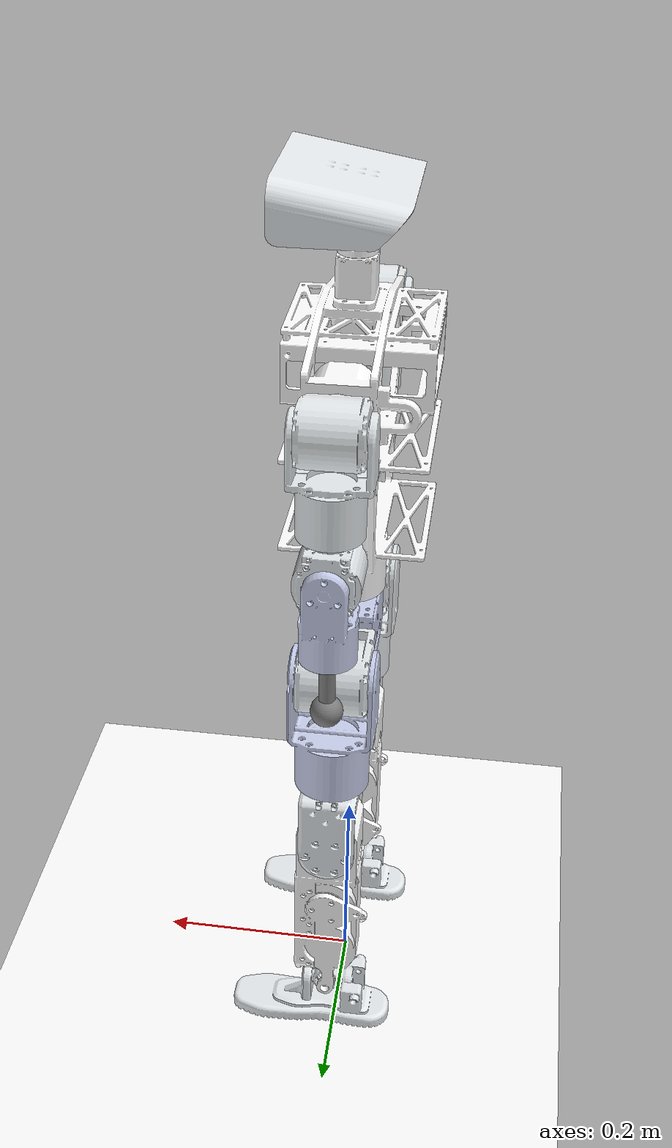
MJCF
<mujoco model="hi_25dof_250708">
  <compiler angle="radian" meshdir="meshes/"/>

  <asset>
    <mesh name="base_link" file="base_link.STL"/>
    <mesh name="waist_link" file="waist_link.STL"/>
    <mesh name="l_hip_pitch_link" file="l_hip_pitch_link.STL"/>
    <mesh name="l_hip_roll_link" file="l_hip_roll_link.STL"/>
    <mesh name="l_thigh_link" file="l_thigh_link.STL"/>
    <mesh name="l_calf_link" file="l_calf_link.STL"/>
    <mesh name="l_ankle_pitch_link" file="l_ankle_pitch_link.STL"/>
    <mesh name="l_ankle_roll_link" file="l_ankle_roll_link.STL"/>
    <mesh name="r_hip_pitch_link" file="r_hip_pitch_link.STL"/>
    <mesh name="r_hip_roll_link" file="r_hip_roll_link.STL"/>
    <mesh name="r_thigh_link" file="r_thigh_link.STL"/>
    <mesh name="r_calf_link" file="r_calf_link.STL"/>
    <mesh name="r_ankle_pitch_link" file="r_ankle_pitch_link.STL"/>
    <mesh name="r_ankle_roll_link" file="r_ankle_roll_link.STL"/>
    <mesh name="l_shoulder_pitch_link" file="l_shoulder_pitch_link.STL"/>
    <mesh name="l_shoulder_roll_link" file="l_shoulder_roll_link.STL"/>
    <mesh name="l_upper_arm_link" file="l_upper_arm_link.STL"/>
    <mesh name="l_elbow_link" file="l_elbow_link.STL"/>
    <mesh name="l_wrist_link" file="l_wrist_link.STL"/>
    <mesh name="r_shoulder_pitch_link" file="r_shoulder_pitch_link.STL"/>
    <mesh name="r_shoulder_roll_link" file="r_shoulder_roll_link.STL"/>
    <mesh name="r_upper_arm_link" file="r_upper_arm_link.STL"/>
    <mesh name="r_elbow_link" file="r_elbow_link.STL"/>
    <mesh name="r_wrist_link" file="r_wrist_link.STL"/>
    <mesh name="head_yaw_link" file="head_yaw_link.STL"/>
    <mesh name="head_pitch_link" file="head_pitch_link.STL"/>
  </asset>

  <worldbody>
    <body name="base_link" pos="0 0 0.688">
      <site name="imu" size="0.01" pos="-0.0 -0.0 0.0" />

      <inertial pos="0.007306 0 -0.048481" quat="0.999992 2.41514e-05 -0.00402332 -8.39315e-05" mass="4.80787" diaginertia="0.0458926 0.0316408 0.0186378"/>
      <joint name="floating_base_joint" type="free" limited="false" actuatorfrclimited="false"/>
      <geom type="mesh" contype="0" conaffinity="0" group="1" density="0" rgba="1 1 1 1" mesh="base_link"/>
      <geom type="mesh" rgba="1 1 1 1" mesh="base_link"/>
      <body name="waist_link" pos="0.009 0 -0.2126">
        <inertial pos="0 0 -0.0391895" quat="0.707107 0.707107 0 0" mass="1.35043" diaginertia="0.0022104 0.0019106 0.0010637"/>
        <joint name="waist_joint" pos="0 0 0" axis="0 0 1" range="-3.14 3.14" actuatorfrcrange="-21 21"/>
        <geom type="mesh" contype="0" conaffinity="0" group="1" density="0" rgba="0.79216 0.81961 0.93333 1" mesh="waist_link"/>
        <geom type="mesh" rgba="0.79216 0.81961 0.93333 1" mesh="waist_link"/>
        <body name="l_hip_pitch_link" pos="0 0.0575 -0.04">
          <inertial pos="-0.000511 0.039927 0" quat="0.707082 0.707082 0.005874 0.005874" mass="0.66609" diaginertia="0.00046911 0.0004671 0.00043299"/>
          <joint name="l_hip_pitch_joint" pos="0 0 0" axis="0 1 0" range="-3.14 3.14" actuatorfrcrange="-21 21"/>
          <geom type="mesh" contype="0" conaffinity="0" group="1" density="0" rgba="0.89804 0.91765 0.92941 1" mesh="l_hip_pitch_link"/>
          <geom type="mesh" rgba="0.89804 0.91765 0.92941 1" mesh="l_hip_pitch_link"/>
          <body name="l_hip_roll_link" pos="0.02725 0.042 0">
            <inertial pos="-0.026857 0 -0.075365" quat="0.706985 0.0130968 0.0130968 0.706985" mass="0.7909" diaginertia="0.0015217 0.00131357 0.000681333"/>
            <joint name="l_hip_roll_joint" pos="0 0 0" axis="1 0 0" range="-3.14 3.14" actuatorfrcrange="-21 21"/>
            <geom type="mesh" contype="0" conaffinity="0" group="1" density="0" rgba="0.79216 0.81961 0.93333 1" mesh="l_hip_roll_link"/>
            <geom type="mesh" rgba="0.79216 0.81961 0.93333 1" mesh="l_hip_roll_link"/>
            <body name="l_thigh_link" pos="-0.02725 0 -0.123">
              <inertial pos="0 -0.0018181 -0.032514" quat="0.491506 0.870874 0 0" mass="0.25619" diaginertia="0.0004162 0.000287924 0.000249276"/>
              <joint name="l_thigh_joint" pos="0 0 0" axis="0 0 1" range="-3.14 3.14" actuatorfrcrange="-21 21"/>
              <geom type="mesh" contype="0" conaffinity="0" group="1" density="0" rgba="0.89804 0.91765 0.92941 1" mesh="l_thigh_link"/>
              <geom type="mesh" rgba="0.89804 0.91765 0.92941 1" mesh="l_thigh_link"/>
              <body name="l_calf_link" pos="0 0.03175 -0.069">
                <inertial pos="0.0010782 -0.031083 -0.064513" quat="0.70511 -0.0111865 0.00266066 0.709005" mass="1.6402" diaginertia="0.00650394 0.00644571 0.000895843"/>
                <joint name="l_calf_joint" pos="0 0 0" axis="0 1 0" range="-3.14 3.14" actuatorfrcrange="-21 21"/>
                <geom type="mesh" contype="0" conaffinity="0" group="1" density="0" rgba="1 1 1 1" mesh="l_calf_link"/>
                <geom type="mesh" rgba="1 1 1 1" mesh="l_calf_link"/>
                <body name="l_ankle_pitch_link" pos="0 -0.03175 -0.19945">
                  <inertial pos="-0.0009911 0 0" quat="0.5 0.5 0.5 0.5" mass="0.013231" diaginertia="2.8e-06 2.3e-06 9e-07"/>
                  <joint name="l_ankle_pitch_joint" pos="0 0 0" axis="0 1 0" range="-3.14 3.14" actuatorfrcrange="-21 21"/>
                  <geom type="mesh" contype="0" conaffinity="0" group="1" density="0" rgba="0.89804 0.91765 0.92941 1" mesh="l_ankle_pitch_link"/>
                  <geom type="mesh" rgba="0.89804 0.91765 0.92941 1" mesh="l_ankle_pitch_link"/>
                  <body name="l_ankle_roll_link" pos="0.0215 0 0">
                    <inertial pos="-0.012597 0 -0.028754" quat="0 0.741267 0 0.67121" mass="0.40357" diaginertia="0.000775295 0.000774 0.000142605"/>
                    <joint name="l_ankle_roll_joint" pos="0 0 0" axis="1 0 0" range="-3.14 3.14" actuatorfrcrange="-21 21"/>
                    <geom type="mesh" contype="0" conaffinity="0" group="1" density="0" rgba="0.89804 0.91765 0.92941 1" mesh="l_ankle_roll_link"/>
                    <geom type="mesh" rgba="0.89804 0.91765 0.92941 1" mesh="l_ankle_roll_link"/>
                  </body>
                </body>
              </body>
            </body>
          </body>
        </body>
        <body name="r_hip_pitch_link" pos="0 -0.0575 -0.04">
          <inertial pos="-0.000511 -0.039927 0" quat="0.707082 0.707082 -0.005874 -0.005874" mass="0.66609" diaginertia="0.00046911 0.0004671 0.00043299"/>
          <joint name="r_hip_pitch_joint" pos="0 0 0" axis="0 1 0" range="-3.14 3.14" actuatorfrcrange="-21 21"/>
          <geom type="mesh" contype="0" conaffinity="0" group="1" density="0" rgba="0.89804 0.91765 0.92941 1" mesh="r_hip_pitch_link"/>
          <geom type="mesh" rgba="0.89804 0.91765 0.92941 1" mesh="r_hip_pitch_link"/>
          <body name="r_hip_roll_link" pos="0.02725 -0.042 0">
            <inertial pos="-0.0268572 0 -0.0753647" quat="0.706985 0.0130968 0.0130968 0.706985" mass="0.790903" diaginertia="0.0015217 0.00131357 0.000681333"/>
            <joint name="r_hip_roll_joint" pos="0 0 0" axis="1 0 0" range="-3.14 3.14" actuatorfrcrange="-21 21"/>
            <geom type="mesh" contype="0" conaffinity="0" group="1" density="0" rgba="0.89804 0.91765 0.92941 1" mesh="r_hip_roll_link"/>
            <geom type="mesh" rgba="0.89804 0.91765 0.92941 1" mesh="r_hip_roll_link"/>
            <body name="r_thigh_link" pos="-0.02725 0 -0.123">
              <inertial pos="0 0.0018181 -0.032514" quat="0.870874 0.491506 0 0" mass="0.25619" diaginertia="0.0004162 0.000287924 0.000249276"/>
              <joint name="r_thigh_joint" pos="0 0 0" axis="0 0 1" range="-3.14 3.14" actuatorfrcrange="-21 21"/>
              <geom type="mesh" contype="0" conaffinity="0" group="1" density="0" rgba="0.89804 0.91765 0.92941 1" mesh="r_thigh_link"/>
              <geom type="mesh" rgba="0.89804 0.91765 0.92941 1" mesh="r_thigh_link"/>
              <body name="r_calf_link" pos="0 -0.03175 -0.069">
                <inertial pos="0.0010785 0.0310814 -0.0645143" quat="0.708845 0.00253783 -0.0110549 0.705273" mass="1.64019" diaginertia="0.00650377 0.00644541 0.000895623"/>
                <joint name="r_calf_joint" pos="0 0 0" axis="0 1 0" range="-3.14 3.14" actuatorfrcrange="-21 21"/>
                <geom type="mesh" contype="0" conaffinity="0" group="1" density="0" rgba="1 1 1 1" mesh="r_calf_link"/>
                <geom type="mesh" rgba="1 1 1 1" mesh="r_calf_link"/>
                <body name="r_ankle_pitch_link" pos="0 0.03175 -0.19945">
                  <inertial pos="-0.0009911 0 0" quat="0.5 0.5 0.5 0.5" mass="0.013231" diaginertia="2.8e-06 2.3e-06 9e-07"/>
                  <joint name="r_ankle_pitch_joint" pos="0 0 0" axis="0 1 0" range="-3.14 3.14" actuatorfrcrange="-21 21"/>
                  <geom type="mesh" contype="0" conaffinity="0" group="1" density="0" rgba="0.89804 0.91765 0.92941 1" mesh="r_ankle_pitch_link"/>
                  <geom type="mesh" rgba="0.89804 0.91765 0.92941 1" mesh="r_ankle_pitch_link"/>
                  <body name="r_ankle_roll_link" pos="0.0215 0 0">
                    <inertial pos="-0.012597 0 -0.028754" quat="0 0.741267 0 0.67121" mass="0.40357" diaginertia="0.000775295 0.000774 0.000142605"/>
                    <joint name="r_ankle_roll_joint" pos="0 0 0" axis="1 0 0" range="-3.14 3.14" actuatorfrcrange="-21 21"/>
                    <geom type="mesh" contype="0" conaffinity="0" group="1" density="0" rgba="0.89804 0.91765 0.92941 1" mesh="r_ankle_roll_link"/>
                    <geom type="mesh" rgba="0.89804 0.91765 0.92941 1" mesh="r_ankle_roll_link"/>
                  </body>
                </body>
              </body>
            </body>
          </body>
        </body>
      </body>
      <body name="l_shoulder_pitch_link" pos="0.009 0.11945 0.020657">
        <inertial pos="-0.0007568 0.030935 0" quat="0.48479 0.514761 -0.48479 0.514761" mass="0.39963" diaginertia="0.0002098 0.00019906 0.00018234"/>
        <joint name="l_shoulder_pitch_joint" pos="0 0 0" axis="0 1 0" range="-3.14 3.14" actuatorfrcrange="-21 21"/>
        <geom type="mesh" contype="0" conaffinity="0" group="1" density="0" rgba="0.89804 0.91765 0.92941 1" mesh="l_shoulder_pitch_link"/>
        <geom type="mesh" rgba="0.89804 0.91765 0.92941 1" mesh="l_shoulder_pitch_link"/>
        <body name="l_shoulder_roll_link" pos="0.02335 0.034 0">
          <inertial pos="-0.02515 0 -0.060623" quat="0.702311 -0.0822171 -0.0822171 0.702311" mass="0.45112" diaginertia="0.0004383 0.000383444 0.000240156"/>
          <joint name="l_shoulder_roll_joint" pos="0 0 0" axis="1 0 0" range="-3.14 3.14" actuatorfrcrange="-21 21"/>
          <geom type="mesh" contype="0" conaffinity="0" group="1" density="0" rgba="0.89804 0.91765 0.92941 1" mesh="l_shoulder_roll_link"/>
          <geom type="mesh" rgba="0.89804 0.91765 0.92941 1" mesh="l_shoulder_roll_link"/>
          <body name="l_upper_arm_link" pos="-0.0236 0 -0.0977">
            <inertial pos="0 -0.0007568 -0.030935" quat="0.999551 -0.0299715 0 0" mass="0.39963" diaginertia="0.0002098 0.00019906 0.00018234"/>
            <joint name="l_upper_arm_joint" pos="0 0 0" axis="0 0 1" range="-3.14 3.14" actuatorfrcrange="-21 21"/>
            <geom type="mesh" contype="0" conaffinity="0" group="1" density="0" rgba="0.89804 0.91765 0.92941 1" mesh="l_upper_arm_link"/>
            <geom type="mesh" rgba="0.89804 0.91765 0.92941 1" mesh="l_upper_arm_link"/>
            <body name="l_elbow_link" pos="0 0.02335 -0.034">
              <inertial pos="0 -0.026131 -0.051717" quat="0.989237 0.146325 0 0" mass="0.27632" diaginertia="0.0002914 0.000237433 0.000143967"/>
              <joint name="l_elbow_joint" pos="0 0 0" axis="0 1 0" range="-3.14 3.14" actuatorfrcrange="-21 21"/>
              <geom type="mesh" contype="0" conaffinity="0" group="1" density="0" rgba="0.79216 0.81961 0.93333 1" mesh="l_elbow_link"/>
              <geom type="mesh" rgba="0.79216 0.81961 0.93333 1" mesh="l_elbow_link"/>
              <body name="l_wrist_link" pos="0 -0.0236 -0.0884">
                <inertial pos="0 0 -0.0390078" mass="0.2921" diaginertia="0.0001388 0.0001388 2.21e-05"/>
                <joint name="l_wrist_joint" pos="0 0 0" axis="0 0 1" range="-3.14 3.14" actuatorfrcrange="-21 21"/>
                <geom type="mesh" contype="0" conaffinity="0" group="1" density="0" rgba="0.50196 0.50196 0.50196 1" mesh="l_wrist_link"/>
                <geom type="mesh" rgba="0.50196 0.50196 0.50196 1" mesh="l_wrist_link"/>
              </body>
            </body>
          </body>
        </body>
      </body>
      <body name="r_shoulder_pitch_link" pos="0.009 -0.11945 0.020657">
        <inertial pos="-0.0007568 -0.030935 0" quat="0.514761 0.48479 -0.514761 0.48479" mass="0.39963" diaginertia="0.0002098 0.00019906 0.00018234"/>
        <joint name="r_shoulder_pitch_joint" pos="0 0 0" axis="0 1 0" range="-3.14 3.14" actuatorfrcrange="-21 21"/>
        <geom type="mesh" contype="0" conaffinity="0" group="1" density="0" rgba="0.89804 0.91765 0.92941 1" mesh="r_shoulder_pitch_link"/>
        <geom type="mesh" rgba="0.89804 0.91765 0.92941 1" mesh="r_shoulder_pitch_link"/>
        <body name="r_shoulder_roll_link" pos="0.02335 -0.034 0">
          <inertial pos="-0.02515 0 -0.060623" quat="0.702311 -0.0822171 -0.0822171 0.702311" mass="0.45112" diaginertia="0.0004383 0.000383444 0.000240156"/>
          <joint name="r_shoulder_roll_joint" pos="0 0 0" axis="1 0 0" range="-3.14 3.14" actuatorfrcrange="-21 21"/>
          <geom type="mesh" contype="0" conaffinity="0" group="1" density="0" rgba="0.89804 0.91765 0.92941 1" mesh="r_shoulder_roll_link"/>
          <geom type="mesh" rgba="0.89804 0.91765 0.92941 1" mesh="r_shoulder_roll_link"/>
          <body name="r_upper_arm_link" pos="-0.0236 0 -0.0977">
            <inertial pos="0 0.0007568 -0.030935" quat="0.999551 0.0299715 0 0" mass="0.39963" diaginertia="0.0002098 0.00019906 0.00018234"/>
            <joint name="r_upper_arm_joint" pos="0 0 0" axis="0 0 1" range="-3.14 3.14" actuatorfrcrange="-21 21"/>
            <geom type="mesh" contype="0" conaffinity="0" group="1" density="0" rgba="0.89804 0.91765 0.92941 1" mesh="r_upper_arm_link"/>
            <geom type="mesh" rgba="0.89804 0.91765 0.92941 1" mesh="r_upper_arm_link"/>
            <body name="r_elbow_link" pos="0 -0.02335 -0.034">
              <inertial pos="0 0.026131 -0.051717" quat="0.989237 -0.146325 0 0" mass="0.27632" diaginertia="0.0002914 0.000237433 0.000143967"/>
              <joint name="r_elbow_joint" pos="0 0 0" axis="0 1 0" range="-3.14 3.14" actuatorfrcrange="-21 21"/>
              <geom type="mesh" contype="0" conaffinity="0" group="1" density="0" rgba="0.89804 0.91765 0.92941 1" mesh="r_elbow_link"/>
              <geom type="mesh" rgba="0.89804 0.91765 0.92941 1" mesh="r_elbow_link"/>
              <body name="r_wrist_link" pos="0 0.0236 -0.0884">
                <inertial pos="0 0 -0.0390078" mass="0.2921" diaginertia="0.0001388 0.0001388 2.21e-05"/>
                <joint name="r_wrist_joint" pos="0 0 0" axis="0 0 1" range="-3.14 3.14" actuatorfrcrange="-21 21"/>
                <geom type="mesh" contype="0" conaffinity="0" group="1" density="0" rgba="0.50196 0.50196 0.50196 1" mesh="r_wrist_link"/>
                <geom type="mesh" rgba="0.50196 0.50196 0.50196 1" mesh="r_wrist_link"/>
              </body>
            </body>
          </body>
        </body>
      </body>
      <body name="head_yaw_link" pos="0.009 0 0.1175">
        <inertial pos="2e-05 -0.0015717 0.022694" quat="0.972018 -0.234907 0 0" mass="0.17851" diaginertia="2.2e-05 1.90806e-05 1.34194e-05"/>
        <joint name="head_yaw_joint" pos="0 0 0" axis="0 0 1" range="-3.14 3.14" actuatorfrcrange="-21 21"/>
        <geom type="mesh" contype="0" conaffinity="0" group="1" density="0" rgba="1 1 1 1" mesh="head_yaw_link"/>
        <geom type="mesh" rgba="1 1 1 1" mesh="head_yaw_link"/>
        <body name="head_pitch_link" pos="0 0.0151 0.0255">
          <inertial pos="0.02294 -0.013625 0.031517" quat="0.506593 0.501887 -0.495024 0.496413" mass="0.25396" diaginertia="0.000834371 0.000664755 0.000261174"/>
          <joint name="head_pitch_joint" pos="0 0 0" axis="0 1 0" range="-3.14 3.14" actuatorfrcrange="-21 21"/>
          <geom type="mesh" contype="0" conaffinity="0" group="1" density="0" rgba="0.89804 0.91765 0.92941 1" mesh="head_pitch_link"/>
          <geom type="mesh" rgba="0.89804 0.91765 0.92941 1" mesh="head_pitch_link"/>
        </body>
      </body>
    </body>
  </worldbody>
  <actuator>
      <motor name="l_shoulder_pitch_joint" joint="l_shoulder_pitch_joint" gear="1" ctrllimited="true" ctrlrange="-30 30" />
      <motor name="l_shoulder_roll_joint" joint="l_shoulder_roll_joint" gear="1" ctrllimited="true" ctrlrange="-30 30" />
      <motor name="l_upper_arm_joint" joint="l_upper_arm_joint" gear="1" ctrllimited="true" ctrlrange="-30 30" />
      <motor name="l_elbow_joint" joint="l_elbow_joint" gear="1" ctrllimited="true" ctrlrange="-30 30" />
      <motor name="r_shoulder_pitch_joint" joint="r_shoulder_pitch_joint" gear="1" ctrllimited="true" ctrlrange="-30 30" />
      <motor name="r_shoulder_roll_joint" joint="r_shoulder_roll_joint" gear="1" ctrllimited="true" ctrlrange="-30 30" />
      <motor name="r_upper_arm_joint" joint="r_upper_arm_joint" gear="1" ctrllimited="true" ctrlrange="-30 30" />
      <motor name="r_elbow_joint" joint="r_elbow_joint" gear="1" ctrllimited="true" ctrlrange="-30 30" />
      <motor name="waist_joint" joint="waist_joint" gear="1" ctrllimited="true" ctrlrange="-30 30" />
      <motor name="l_hip_pitch_joint" joint="l_hip_pitch_joint" gear="1" ctrllimited="true" ctrlrange="-30 30" />
      <motor name="l_hip_roll_joint" joint="l_hip_roll_joint" gear="1" ctrllimited="true" ctrlrange="-30 30" />
      <motor name="l_thigh_joint" joint="l_thigh_joint" gear="1" ctrllimited="true" ctrlrange="-30 30" />
      <motor name="l_calf_joint" joint="l_calf_joint" gear="1" ctrllimited="true" ctrlrange="-30 30" />
      <motor name="l_ankle_pitch_joint" joint="l_ankle_pitch_joint" gear="1" ctrllimited="true" ctrlrange="-30 30" />
      <motor name="l_ankle_roll_joint" joint="l_ankle_roll_joint" gear="1" ctrllimited="true" ctrlrange="-30 30" />
      <motor name="r_hip_pitch_joint" joint="r_hip_pitch_joint" gear="1" ctrllimited="true" ctrlrange="-30 30" />
      <motor name="r_hip_roll_joint" joint="r_hip_roll_joint" gear="1" ctrllimited="true" ctrlrange="-30 30" />
      <motor name="r_thigh_joint" joint="r_thigh_joint" gear="1" ctrllimited="true" ctrlrange="-30 30" />
      <motor name="r_calf_joint" joint="r_calf_joint" gear="1" ctrllimited="true" ctrlrange="-30 30" />
      <motor name="r_ankle_pitch_joint" joint="r_ankle_pitch_joint" gear="1" ctrllimited="true" ctrlrange="-30 30" />
      <motor name="r_ankle_roll_joint" joint="r_ankle_roll_joint" gear="1" ctrllimited="true" ctrlrange="-30 30" />

   </actuator>
   <sensor>
   <!-- Position sensors -->
    <actuatorpos name="l_shoulder_pitch_joint_p" actuator="l_shoulder_pitch_joint" user="13"/>
    <actuatorpos name="l_shoulder_roll_joint_p" actuator="l_shoulder_roll_joint" user="13"/>
    <actuatorpos name="l_upper_arm_joint_p" actuator="l_upper_arm_joint" user="13"/>
    <actuatorpos name="l_elbow_joint_p" actuator="l_elbow_joint" user="13"/>
    <actuatorpos name="r_shoulder_pitch_joint_p" actuator="r_shoulder_pitch_joint" user="13"/>
    <actuatorpos name="r_shoulder_roll_joint_p" actuator="r_shoulder_roll_joint" user="13"/>
    <actuatorpos name="r_upper_arm_joint_p" actuator="r_upper_arm_joint" user="13"/>
    <actuatorpos name="r_elbow_joint_p" actuator="r_elbow_joint" user="13"/>
    <actuatorpos name="waist_joint_p" actuator="waist_joint" user="13"/>
    <actuatorpos name="l_hip_pitch_joint_p" actuator="l_hip_pitch_joint" user="13"/>
    <actuatorpos name="l_hip_roll_joint_p" actuator="l_hip_roll_joint" user="13"/>
    <actuatorpos name="l_thigh_joint_p" actuator="l_thigh_joint" user="13"/>
    <actuatorpos name="l_calf_joint_p" actuator="l_calf_joint" user="13"/>
    <actuatorpos name="l_ankle_pitch_joint_p" actuator="l_ankle_pitch_joint" user="13"/>
    <actuatorpos name="l_ankle_roll_joint_p" actuator="l_ankle_roll_joint" user="13"/>

    <actuatorpos name="r_hip_pitch_joint_p" actuator="r_hip_pitch_joint" user="13"/>
    <actuatorpos name="r_hip_roll_joint_p" actuator="r_hip_roll_joint" user="13"/>
    <actuatorpos name="r_thigh_joint_p" actuator="r_thigh_joint" user="13"/>
    <actuatorpos name="r_calf_joint_p" actuator="r_calf_joint" user="13"/>
    <actuatorpos name="r_ankle_pitch_joint_p" actuator="r_ankle_pitch_joint" user="13"/>
    <actuatorpos name="r_ankle_roll_joint_p" actuator="r_ankle_roll_joint" user="13"/>

    <!-- Velocity sensors -->
    <actuatorvel name="l_shoulder_pitch_joint_v" actuator="l_shoulder_pitch_joint" user="13" noise="1e-3"/>
    <actuatorvel name="l_shoulder_roll_joint_v" actuator="l_shoulder_roll_joint" user="13" noise="1e-3"/>
    <actuatorvel name="l_upper_arm_joint_v" actuator="l_upper_arm_joint" user="13" noise="1e-3"/>
    <actuatorvel name="l_elbow_joint_v" actuator="l_elbow_joint" user="13" noise="1e-3"/>
    <actuatorvel name="r_shoulder_pitch_joint_v" actuator="r_shoulder_pitch_joint" user="13" noise="1e-3"/>
    <actuatorvel name="r_shoulder_roll_joint_v" actuator="r_shoulder_roll_joint" user="13" noise="1e-3"/>
    <actuatorvel name="r_upper_arm_joint_v" actuator="r_upper_arm_joint" user="13" noise="1e-3"/>
    <actuatorvel name="r_elbow_joint_v" actuator="r_elbow_joint" user="13" noise="1e-3"/>
    <actuatorvel name="waist_joint_v" actuator="waist_joint" user="13" noise="1e-3"/>
    <actuatorvel name="l_hip_pitch_joint_v" actuator="l_hip_pitch_joint" user="13" noise="1e-3"/>
    <actuatorvel name="l_hip_roll_joint_v" actuator="l_hip_roll_joint" user="13" noise="1e-3"/>
    <actuatorvel name="l_thigh_joint_v" actuator="l_thigh_joint" user="13" noise="1e-3"/>
    <actuatorvel name="l_calf_joint_v" actuator="l_calf_joint" user="13" noise="1e-3"/>
    <actuatorvel name="l_ankle_pitch_joint_v" actuator="l_ankle_pitch_joint" user="13" noise="1e-3"/>
    <actuatorvel name="l_ankle_roll_joint_v" actuator="l_ankle_roll_joint" user="13" noise="1e-3"/>

    <actuatorvel name="r_hip_pitch_joint_v" actuator="r_hip_pitch_joint" user="13" noise="1e-3"/>
    <actuatorvel name="r_hip_roll_joint_v" actuator="r_hip_roll_joint" user="13" noise="1e-3"/>
    <actuatorvel name="r_thigh_joint_v" actuator="r_thigh_joint" user="13" noise="1e-3"/>
    <actuatorvel name="r_calf_joint_v" actuator="r_calf_joint" user="13" noise="1e-3"/>
    <actuatorvel name="r_ankle_pitch_joint_v" actuator="r_ankle_pitch_joint" user="13" noise="1e-3"/>
    <actuatorvel name="r_ankle_roll_joint_v" actuator="r_ankle_roll_joint" user="13" noise="1e-3"/>

    <!-- Force sensors -->
    <actuatorfrc name="l_shoulder_pitch_joint_f" actuator="l_shoulder_pitch_joint" user="13" noise="1e-3"/>
    <actuatorfrc name="l_shoulder_roll_joint_f" actuator="l_shoulder_roll_joint" user="13" noise="1e-3"/>
    <actuatorfrc name="l_upper_arm_joint_f" actuator="l_upper_arm_joint" user="13" noise="1e-3"/>
    <actuatorfrc name="l_elbow_joint_f" actuator="l_elbow_joint" user="13" noise="1e-3"/>
    <actuatorfrc name="r_shoulder_pitch_joint_f" actuator="r_shoulder_pitch_joint" user="13" noise="1e-3"/>
    <actuatorfrc name="r_shoulder_roll_joint_f" actuator="r_shoulder_roll_joint" user="13" noise="1e-3"/>
    <actuatorfrc name="r_upper_arm_joint_f" actuator="r_upper_arm_joint" user="13" noise="1e-3"/>
    <actuatorfrc name="r_elbow_joint_f" actuator="r_elbow_joint" user="13" noise="1e-3"/>
    <actuatorfrc name="waist_joint_f" actuator="waist_joint" user="13" noise="1e-3"/>
    <actuatorfrc name="l_hip_pitch_joint_f" actuator="l_hip_pitch_joint" user="13" noise="1e-3"/>
    <actuatorfrc name="l_hip_roll_joint_f" actuator="l_hip_roll_joint" user="13" noise="1e-3"/>
    <actuatorfrc name="l_thigh_joint_f" actuator="l_thigh_joint" user="13" noise="1e-3"/>
    <actuatorfrc name="l_calf_joint_f" actuator="l_calf_joint" user="13" noise="1e-3"/>
    <actuatorfrc name="l_ankle_pitch_joint_f" actuator="l_ankle_pitch_joint" user="13" noise="1e-3"/>
    <actuatorfrc name="l_ankle_roll_joint_f" actuator="l_ankle_roll_joint" user="13" noise="1e-3"/>

    <actuatorfrc name="r_hip_pitch_joint_f" actuator="r_hip_pitch_joint" user="13" noise="1e-3"/>
    <actuatorfrc name="r_hip_roll_joint_f" actuator="r_hip_roll_joint" user="13" noise="1e-3"/>
    <actuatorfrc name="r_thigh_joint_f" actuator="r_thigh_joint" user="13" noise="1e-3"/>
    <actuatorfrc name="r_calf_joint_f" actuator="r_calf_joint" user="13" noise="1e-3"/>
    <actuatorfrc name="r_ankle_pitch_joint_f" actuator="r_ankle_pitch_joint" user="13" noise="1e-3"/>
    <actuatorfrc name="r_ankle_roll_joint_f" actuator="r_ankle_roll_joint" user="13" noise="1e-3"/>

    <framequat name='orientation' objtype='site' noise='0.001' objname='imu'/>
    <framepos name='position' objtype='site' noise='0.001' objname='imu'/>
    <gyro name='angular-velocity' site='imu' noise='0.005' cutoff='34.9'/>
    <velocimeter name='linear-velocity' site='imu' noise='0.001' cutoff='30'/>
    <accelerometer name='linear-acceleration' site='imu' noise='0.005' cutoff='157'/>
    <magnetometer name='magnetometer' site='imu'/>

  </sensor>
    <!-- setup scene -->
  !-- setup scene -->
    <statistic center="1.0 0.7 1.0" extent="0.8"/>
    <visual>
        <headlight diffuse="0.6 0.6 0.6" ambient="0.1 0.1 0.1" specular="0.9 0.9 0.9"/>
        <rgba haze="0.15 0.25 0.35 1"/>
        <global azimuth="-140" elevation="-20" offwidth="2080" offheight="1170"/>
    </visual>
    <asset>
         <texture type="skybox" builtin="gradient" rgb1="1 1 1" rgb2="1 1 1" width="800" height="800"/>
    <texture type="2d" name="groundplane" builtin="checker" mark="edge" rgb1="1 1 1" rgb2="1 1 1" markrgb="0 0 0"
      width="300" height="300"/>
    <material name="groundplane" texture="groundplane" texuniform="true" texrepeat="5 5" reflectance="0"/>
        <texture type="skybox" builtin="gradient" rgb1=".4 .5 .6" rgb2="0 0 0" width="100" height="100"/>
        <texture builtin="flat" height="1278" mark="cross" markrgb="1 1 1" name="texgeom" random="0.01" rgb1="0.8 0.6 0.4" rgb2="0.8 0.6 0.4" type="cube" width="127"/>
        <texture name="texplane" builtin="checker" height="512" width="512" rgb1=".2 .3 .4" rgb2=".1 .15 .2" type="2d" />
        <material name="MatPlane" reflectance="0.5" shininess="0.01" specular="0.1" texrepeat="1 1" texture="texplane" texuniform="true" />
        <material name="geom" texture="texgeom" texuniform="true"/>
    </asset>
    <worldbody>
        <geom name="floor" size="0 0 0.01" type="plane" material="groundplane" contype="1" conaffinity="0" priority="1"
      friction="0.6" condim="3"/>

          <light diffuse=".5 .5 .5" pos="-3 -3 5" dir="3 3 -5" castshadow="true"/>

    </worldbody>
</mujoco>
